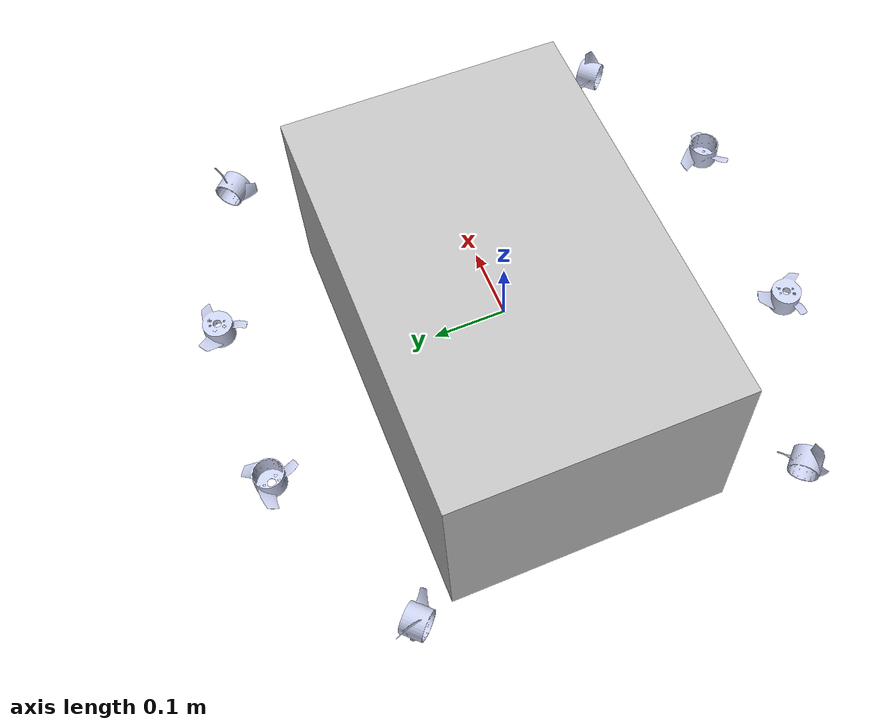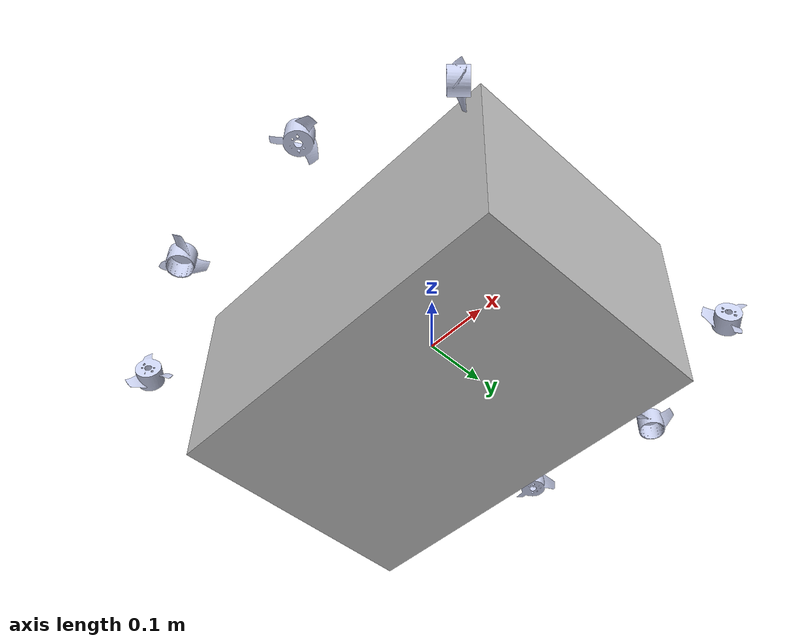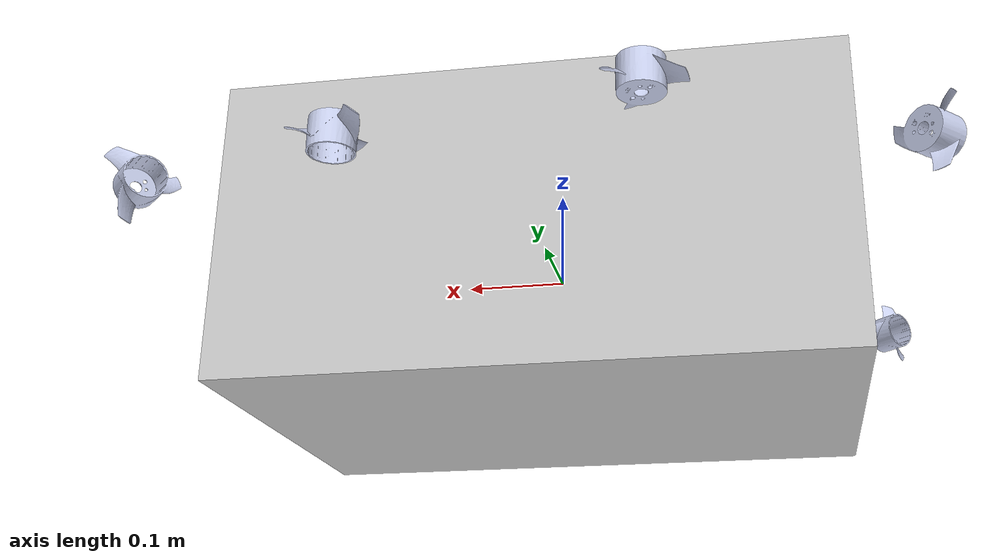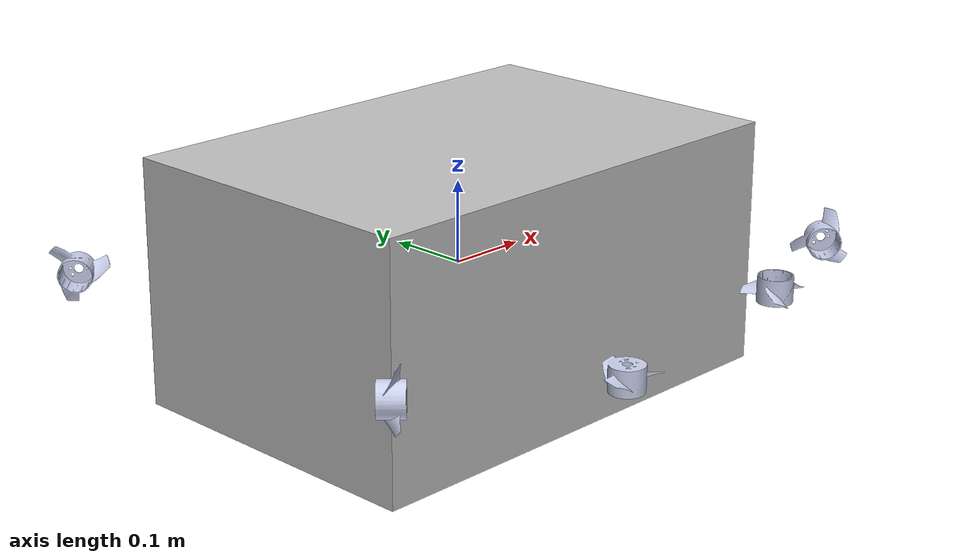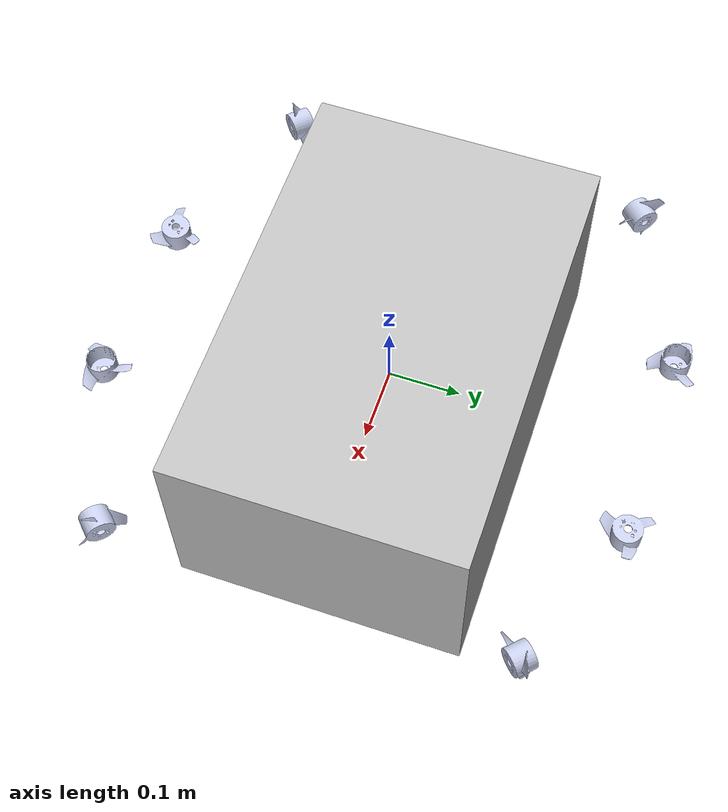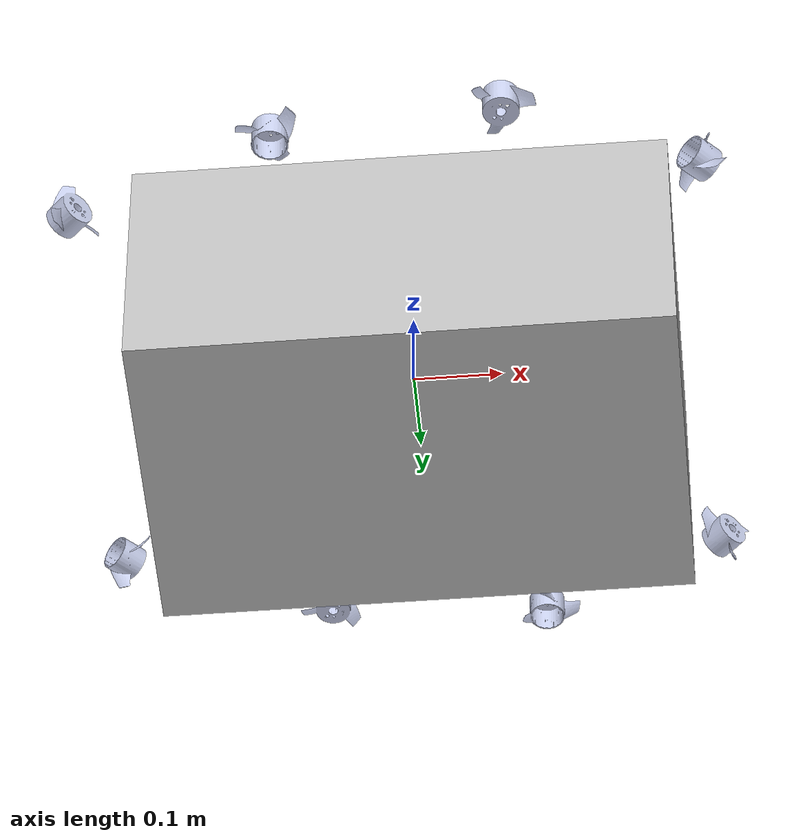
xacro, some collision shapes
<?xml version="1.0"?>
<robot xmlns:xacro="http://www.ros.org/wiki/xacro" name="auv">

  <!-- ── Base Link ─────────────────────────────────────────────── -->
  <link name="base_link">
    <inertial>
      <!-- Design-team CAD inertia (dry, no electronics).
           Gazebo physics uses model.sdf values (74 kg, tuned). -->
      <origin xyz="0.0342192228746154 -1.94199123143583E-05 0.0127520533943641" rpy="0 0 0"/>
      <mass value="11.7363957459801"/>
      <inertia
        ixx="0.0945859213511898"  ixy="-1.27954399069145E-09" ixz="1.21781883017742E-08"
        iyy="0.225604371478563"   iyz="2.26054612723564E-05"
        izz="0.215001008980752"/>
    </inertial>
    <visual>
      <origin xyz="0 0 0" rpy="0 0 0"/>
      <geometry>
        <mesh filename="package://auv_description/meshes/base_link.STL"/>
      </geometry>
      <material name="auv_grey">
        <color rgba="0.753 0.753 0.753 1"/>
      </material>
    </visual>
    <collision>
      <!-- Bounding box for performance — matches Gazebo SDF collision -->
      <origin xyz="0 0 0" rpy="0 0 0"/>
      <geometry>
        <box size="0.6 0.4 0.3"/>
      </geometry>
    </collision>
  </link>

  <!-- ── Thruster 1 (front-right lateral) ─────────────────────── -->
  <link name="Thruster_1">
    <inertial>
      <origin xyz="-1.65261599477384E-06 4.99471065226521E-06 0.0174916530415489" rpy="0 0 0"/>
      <mass value="0.00833118469080807"/>
      <inertia
        ixx="2.336270955557E-06"  ixy="-8.35767577810584E-10" ixz="7.03744732827365E-12"
        iyy="2.3347158066628E-06" iyz="-1.37241579121037E-10"
        izz="3.44436528248629E-06"/>
    </inertial>
    <visual>
      <origin xyz="0 0 0" rpy="0 0 0"/>
      <geometry>
        <mesh filename="package://auv_description/meshes/Thruster_1.STL"/>
      </geometry>
      <material name="auv_blue_grey">
        <color rgba="0.792 0.820 0.933 1"/>
      </material>
    </visual>
    <collision>
      <origin xyz="0 0 0" rpy="0 0 0"/>
      <geometry>
        <mesh filename="package://auv_description/meshes/Thruster_1.STL"/>
      </geometry>
    </collision>
  </link>
  <joint name="T_1" type="fixed">
    <origin xyz="0.32408 -0.29242 0.0127" rpy="-1.5708 0 -0.7854"/>
    <parent link="base_link"/>
    <child link="Thruster_1"/>
  </joint>

  <!-- ── Thruster 2 (front-left lateral) ──────────────────────── -->
  <link name="Thruster_2">
    <inertial>
      <origin xyz="1.65437038701644E-06 -4.64870150475552E-06 0.0174915297990355" rpy="0 0 0"/>
      <mass value="0.0083309095305768"/>
      <inertia
        ixx="2.33619111235207E-06"  ixy="-8.13820508046538E-10" ixz="2.16077489496312E-12"
        iyy="2.33467203295439E-06"  iyz="1.37258136855E-10"
        izz="3.44424719160246E-06"/>
    </inertial>
    <visual>
      <origin xyz="0 0 0" rpy="0 0 0"/>
      <geometry>
        <mesh filename="package://auv_description/meshes/Thruster_2.STL"/>
      </geometry>
      <material name="auv_blue_grey"/>
    </visual>
    <collision>
      <origin xyz="0 0 0" rpy="0 0 0"/>
      <geometry>
        <mesh filename="package://auv_description/meshes/Thruster_2.STL"/>
      </geometry>
    </collision>
  </link>
  <joint name="T_2" type="fixed">
    <origin xyz="0.32408 0.29242 0.0127" rpy="-1.5708 0 -2.3562"/>
    <parent link="base_link"/>
    <child link="Thruster_2"/>
  </joint>

  <!-- ── Thruster 3 (rear-left lateral) ───────────────────────── -->
  <link name="Thruster_3">
    <inertial>
      <origin xyz="-1.65275507435503E-06 4.99561164989342E-06 0.0174916528698197" rpy="0 0 0"/>
      <mass value="0.00833118544573367"/>
      <inertia
        ixx="2.33627107575189E-06"  ixy="-8.35829351221407E-10" ixz="7.03713510409423E-12"
        iyy="2.33471595253492E-06"  iyz="-1.37225448573827E-10"
        izz="3.44436552755622E-06"/>
    </inertial>
    <visual>
      <origin xyz="0 0 0" rpy="0 0 0"/>
      <geometry>
        <mesh filename="package://auv_description/meshes/Thruster_3.STL"/>
      </geometry>
      <material name="auv_blue_grey"/>
    </visual>
    <collision>
      <origin xyz="0 0 0" rpy="0 0 0"/>
      <geometry>
        <mesh filename="package://auv_description/meshes/Thruster_3.STL"/>
      </geometry>
    </collision>
  </link>
  <joint name="T_3" type="fixed">
    <origin xyz="-0.36742 -0.24908 0.0127" rpy="-1.5708 0 -2.3562"/>
    <parent link="base_link"/>
    <child link="Thruster_3"/>
  </joint>

  <!-- ── Thruster 4 (rear-right lateral) ──────────────────────── -->
  <link name="Thruster_4">
    <inertial>
      <origin xyz="1.65294304066421E-06 -4.99563727989594E-06 0.0174916529089585" rpy="0 0 0"/>
      <mass value="0.00833118551321169"/>
      <inertia
        ixx="2.33627107978296E-06"  ixy="-8.35819036247804E-10" ixz="-7.04411608420655E-12"
        iyy="2.33471600006088E-06"  iyz="1.37226123192799E-10"
        izz="3.44436557807613E-06"/>
    </inertial>
    <visual>
      <origin xyz="0 0 0" rpy="0 0 0"/>
      <geometry>
        <mesh filename="package://auv_description/meshes/Thruster_4.STL"/>
      </geometry>
      <material name="auv_blue_grey"/>
    </visual>
    <collision>
      <origin xyz="0 0 0" rpy="0 0 0"/>
      <geometry>
        <mesh filename="package://auv_description/meshes/Thruster_4.STL"/>
      </geometry>
    </collision>
  </link>
  <joint name="T_4" type="fixed">
    <origin xyz="-0.36742 0.24908 0.0127" rpy="-1.5708 0 -0.7854"/>
    <parent link="base_link"/>
    <child link="Thruster_4"/>
  </joint>

  <!-- ── Thruster 5 (front-right vertical) ────────────────────── -->
  <link name="Thruster_5">
    <inertial>
      <origin xyz="-3.6863806380516E-06 8.46465535830898E-07 0.0174900849150032" rpy="0 0 0"/>
      <mass value="0.00833000566535425"/>
      <inertia
        ixx="2.33425913476674E-06"  ixy="7.48421679256586E-10" ixz="1.92758887060273E-10"
        iyy="2.33610424707547E-06"  iyz="-2.91386562802566E-11"
        izz="3.44368285352484E-06"/>
    </inertial>
    <visual>
      <origin xyz="0 0 0" rpy="0 0 0"/>
      <geometry>
        <mesh filename="package://auv_description/meshes/Thruster_5.STL"/>
      </geometry>
      <material name="auv_blue_grey"/>
    </visual>
    <collision>
      <origin xyz="0 0 0" rpy="0 0 0"/>
      <geometry>
        <mesh filename="package://auv_description/meshes/Thruster_5.STL"/>
      </geometry>
    </collision>
  </link>
  <joint name="T_5" type="fixed">
    <origin xyz="0.125 -0.3647 0.043352" rpy="3.1416 0 0"/>
    <parent link="base_link"/>
    <child link="Thruster_5"/>
  </joint>

  <!-- ── Thruster 6 (front-left vertical) ─────────────────────── -->
  <link name="Thruster_6">
    <inertial>
      <origin xyz="-3.68618776502849E-06 8.46651816377442E-07 0.017490084893384" rpy="0 0 0"/>
      <mass value="0.00833000590070646"/>
      <inertia
        ixx="2.33425915543199E-06"  ixy="7.48410125056161E-10" ixz="1.92744361940537E-10"
        iyy="2.3361043816148E-06"   iyz="-2.91383064301683E-11"
        izz="3.44368300051176E-06"/>
    </inertial>
    <visual>
      <origin xyz="0 0 0" rpy="0 0 0"/>
      <geometry>
        <mesh filename="package://auv_description/meshes/Thruster_6.STL"/>
      </geometry>
      <material name="auv_blue_grey"/>
    </visual>
    <collision>
      <origin xyz="0 0 0" rpy="0 0 0"/>
      <geometry>
        <mesh filename="package://auv_description/meshes/Thruster_6.STL"/>
      </geometry>
    </collision>
  </link>
  <joint name="T_6" type="fixed">
    <origin xyz="0.125 0.3647 -0.017952" rpy="0 0 0"/>
    <parent link="base_link"/>
    <child link="Thruster_6"/>
  </joint>

  <!-- ── Thruster 7 (rear-right vertical) ─────────────────────── -->
  <link name="Thruster_7">
    <inertial>
      <origin xyz="3.6869923764199E-06 -8.46168067669684E-07 -0.0144306650891859" rpy="0 0 0"/>
      <mass value="0.00833000548921405"/>
      <inertia
        ixx="2.33425912617549E-06"  ixy="7.48490073203615E-10" ixz="-1.92750385646878E-10"
        iyy="2.33610414811803E-06"  iyz="2.91392307973813E-11"
        izz="3.4436827435088E-06"/>
    </inertial>
    <visual>
      <origin xyz="0 0 0" rpy="0 0 0"/>
      <geometry>
        <mesh filename="package://auv_description/meshes/Thruster_7.STL"/>
      </geometry>
      <material name="auv_blue_grey"/>
    </visual>
    <collision>
      <origin xyz="0 0 0" rpy="0 0 0"/>
      <geometry>
        <mesh filename="package://auv_description/meshes/Thruster_7.STL"/>
      </geometry>
    </collision>
  </link>
  <joint name="T_7" type="fixed">
    <origin xyz="-0.125 -0.3647 0.013969" rpy="0 0 0"/>
    <parent link="base_link"/>
    <child link="Thruster_7"/>
  </joint>

  <!-- ── Thruster 8 (rear-left vertical) ──────────────────────── -->
  <link name="Thruster_8">
    <inertial>
      <origin xyz="3.68574605190408E-06 -8.4483347090325E-07 0.0174900844014666" rpy="0 0 0"/>
      <mass value="0.00833000455285214"/>
      <inertia
        ixx="2.3342587508269E-06"   ixy="7.48277153768253E-10" ixz="-1.92713144617754E-10"
        iyy="2.33610413101085E-06"  iyz="2.90648705679754E-11"
        izz="3.44368238303659E-06"/>
    </inertial>
    <visual>
      <origin xyz="0 0 0" rpy="0 0 0"/>
      <geometry>
        <mesh filename="package://auv_description/meshes/Thruster_8.STL"/>
      </geometry>
      <material name="auv_blue_grey"/>
    </visual>
    <collision>
      <origin xyz="0 0 0" rpy="0 0 0"/>
      <geometry>
        <mesh filename="package://auv_description/meshes/Thruster_8.STL"/>
      </geometry>
    </collision>
  </link>
  <joint name="T_8" type="fixed">
    <origin xyz="-0.125 0.3647 0.043352" rpy="3.1416 0 0"/>
    <parent link="base_link"/>
    <child link="Thruster_8"/>
  </joint>

</robot>
